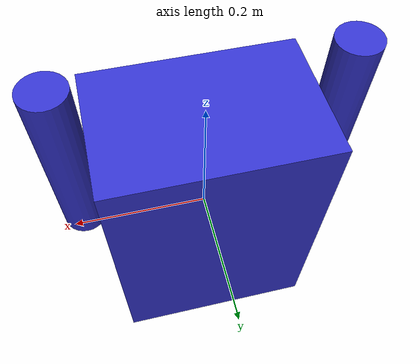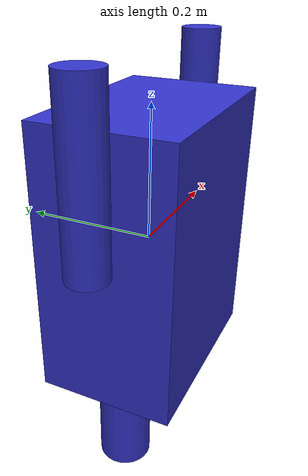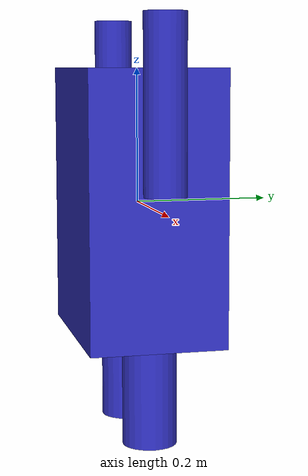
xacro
<?xml version="1.0"?>
<robot xmlns:xacro="http://www.ros.org/wiki/xacro" name="humanoid_robot">
  <!-- Properties -->
  <xacro:property name="torso_mass" value="10.0"/>
  <xacro:property name="limb_mass" value="2.0"/>
  <xacro:property name="joint_effort" value="100"/>
  <xacro:property name="joint_velocity" value="1.0"/>

  <!-- Materials -->
  <xacro:macro name="material_blue">
    <material name="blue"><color rgba="0.2 0.2 0.8 1"/></material>
  </xacro:macro>

  <!-- Limb Macro -->
  <xacro:macro name="limb" params="name length radius parent xyz rpy">
    <link name="${name}">
      <visual>
        <geometry><cylinder radius="${radius}" length="${length}"/></geometry>
        <xacro:material_blue/>
      </visual>
      <collision><geometry><cylinder radius="${radius}" length="${length}"/></geometry></collision>
      <inertial>
        <mass value="${limb_mass}"/>
        <inertia ixx="0.01" ixy="0" ixz="0" iyy="0.01" iyz="0" izz="0.01"/>
      </inertial>
    </link>
    <joint name="${name}_joint" type="revolute">
      <parent link="${parent}"/><child link="${name}"/>
      <origin xyz="${xyz}" rpy="${rpy}"/>
      <axis xyz="1 0 0"/>
      <limit lower="-1.57" upper="1.57" effort="${joint_effort}" velocity="${joint_velocity}"/>
    </joint>
  </xacro:macro>

  <!-- Base Link -->
  <link name="base_link">
    <visual>
      <geometry><box size="0.3 0.2 0.4"/></geometry>
      <xacro:material_blue/>
    </visual>
    <inertial>
      <mass value="${torso_mass}"/>
      <inertia ixx="0.1" ixy="0" ixz="0" iyy="0.1" iyz="0" izz="0.1"/>
    </inertial>
  </link>

  <!-- Arms -->
  <xacro:limb name="left_upper_arm" length="0.25" radius="0.03" parent="base_link" xyz="0.18 0 0.15" rpy="0 0 0"/>
  <xacro:limb name="right_upper_arm" length="0.25" radius="0.03" parent="base_link" xyz="-0.18 0 0.15" rpy="0 0 0"/>

  <!-- Legs -->
  <xacro:limb name="left_thigh" length="0.3" radius="0.04" parent="base_link" xyz="0.08 0 -0.2" rpy="0 0 0"/>
  <xacro:limb name="right_thigh" length="0.3" radius="0.04" parent="base_link" xyz="-0.08 0 -0.2" rpy="0 0 0"/>
</robot>
